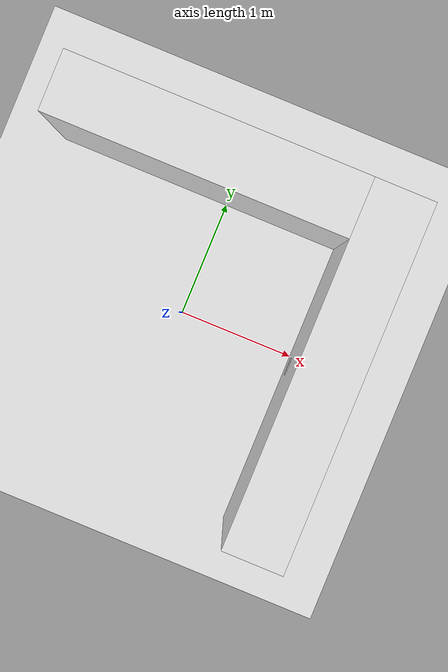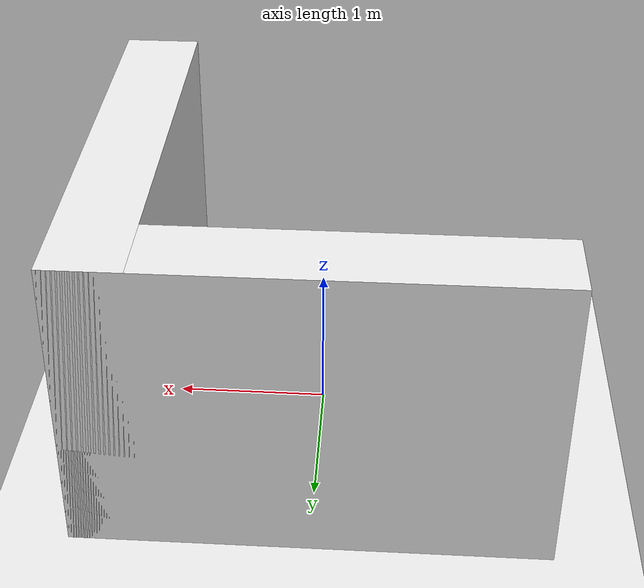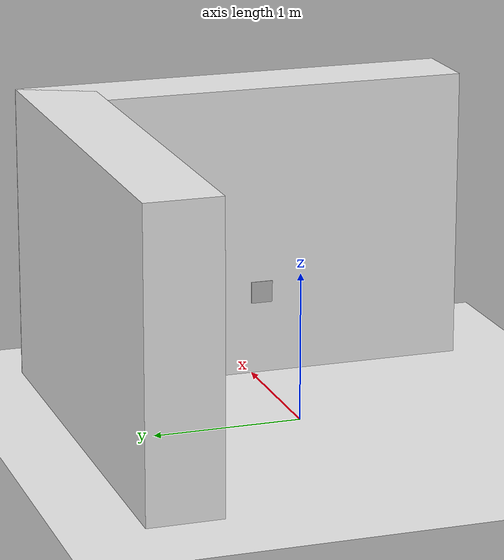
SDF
<?xml version="1.0" ?>
<sdf version='1.4'>
  <world name='calibration'>

    <light type="directional" name="sun">
      <cast_shadows>false</cast_shadows>
      <pose>0 1 10 0 0 0</pose>
      <diffuse>0.9 0.9 0.9 1</diffuse>
      <specular>0.9 0.9 0.9 1</specular>
      <attenuation>
        <range>1000</range>
        <constant>0.9</constant>
        <linear>0.01</linear>
        <quadratic>0.001</quadratic>
      </attenuation>
      <direction>0.5 0.5 -1.0</direction>
    </light>

    <light name='my_light' type='directional'>
      <pose>0.000000 0.000000 30.000000 0.000000 0.000000 0.000000</pose>
      <diffuse>0.900000 0.900000 0.900000 1.000000</diffuse>
      <specular>0.100000 0.100000 0.100000 1.000000</specular>
      <attenuation>
        <range>20.000000</range>
      </attenuation>
      <direction>0.000000 0.000000 -1.000000</direction>
      <cast_shadows>0</cast_shadows>
    </light>

    <model name="floor">
      <static>true</static>
      <link name="link">
      <pose>0 0 0 0 0 0</pose>
        <visual name="visual">
          <cast_shadows>false</cast_shadows>
          <geometry>
            <plane>
              <normal>0 0 1</normal>
              <size>15 15</size>
            </plane>
          </geometry>
          <material>
            <script>
              <uri>file://media/materials/scripts/gazebo.material</uri>
              <name>Gazebo/White</name>
            </script>
          </material>
        </visual>
        <collision name="collision">
          <geometry>
            <plane>
              <normal>0 0 1</normal>
              <size>15 15</size>
            </plane>
          </geometry>
          <surface>
            <friction>
              <ode>
                <mu>100</mu>
                <mu2>50</mu2>
              </ode>
            </friction>
          </surface>
        </collision>
      </link>
    </model>

    <model name='wall_1'>
      <static>true</static>
      <pose>1.25 0 1 0 0 0</pose>
      <link name='link'>
        <collision name='collision'>
          <geometry>
            <box>
              <size>0.5 3 2</size>
            </box>
          </geometry>
        </collision>
        <visual name='visual'>
          <geometry>
            <box>
              <size>0.5 3 2</size>
            </box>
          </geometry>
          <material>
            <script>
              <uri>file://media/materials/scripts/gazebo.material</uri>
              <name>Gazebo/White</name>
            </script>
          </material>
        </visual>
      </link>
    </model>

    <model name='wall_2'>
      <static>true</static>
      <pose>0 1.25 1 0 0 0</pose>
      <link name='link'>
        <collision name='collision'>
          <geometry>
            <box>
              <size>3 0.5 2</size>
            </box>
          </geometry>
        </collision>
        <visual name='visual'>
          <geometry>
            <box>
              <size>3 0.5 2</size>
            </box>
          </geometry>
          <material>
            <script>
              <uri>file://media/materials/scripts/gazebo.material</uri>
              <name>Gazebo/White</name>
            </script>
          </material>
        </visual>
      </link>
    </model>

<model name='calibration_setup_pitag'>
      <static>true</static>
      <pose>1.005 0 0.5 0 0 0</pose>
      <link name='tag_0'>
        <pose>0 0 0 0 0 0</pose>
        <collision name='collision'>
          <pose>0 0 0 0 0 0</pose>
          <geometry>
            <box>
              <size>0.1 0.1 0.1</size>
            </box>
          </geometry>
        </collision>
        <visual name='visual'>
          <pose>0 0 0 0 0 0</pose>
          <geometry>
            <mesh>
              <scale>1 1 1</scale>
              <uri>/home/rmb-mr/git/squirrel/src/squirrel_calibration/robotino_calibration_sim/world/prefabs/pitags/tag_0/tag0.dae</uri>
            </mesh>
          </geometry>
        </visual>
      </link>
    </model>

    <gui>
      <camera name='user_camera'>
        <pose>12 -3 12 0 0.7 3.14</pose>
      </camera>
    </gui>

  </world>
</sdf>
